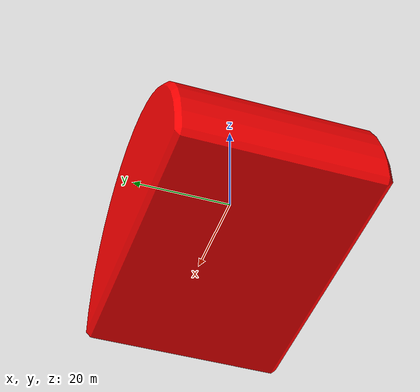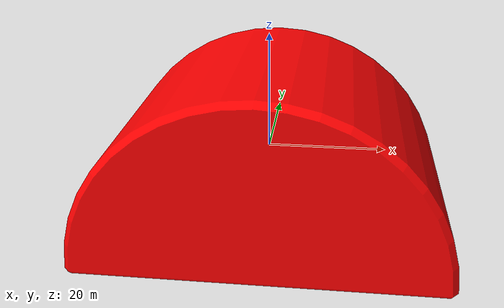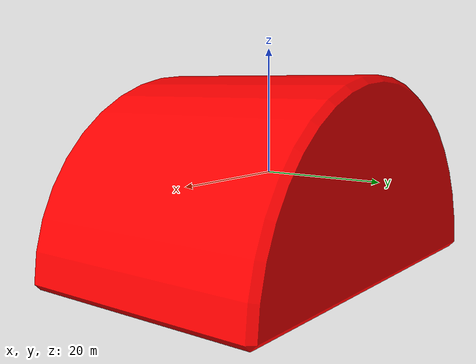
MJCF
<mujoco>
    <asset>
        <mesh file="rainbow_stacker/part0/0_rainbow_part0_20200427_20200428.stl" name="rainbow0"></mesh>
        <material name="block_mat" specular="0" shininess="0.5" reflectance="0" rgba="1 0 0 1"/>
    </asset>
    <worldbody>
        <body quat="0.7071 0 -0.7071 0">
            <geom type="mesh" mesh="rainbow0" material="block_mat"/>
            <joint type="free"/>
        </body>
    </worldbody>
</mujoco>
